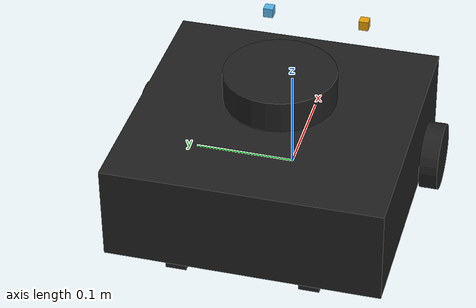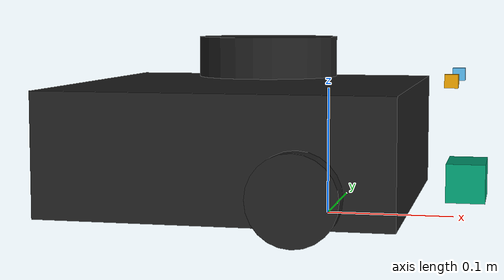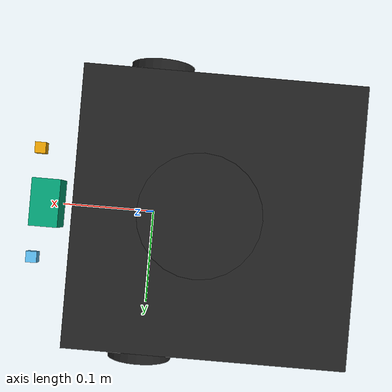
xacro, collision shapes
<?xml version="1.0" ?>
<robot name="turtlebot3_waffle_pi" xmlns:xacro="http://ros.org/wiki/xacro">
  <xacro:include filename="$(find turtlebot3_description)/urdf/common_properties.xacro"/>
  <xacro:include filename="$(find turtlebot3_description)/urdf/turtlebot3_waffle_pi.gazebo.xacro"/>

  <link name="base_footprint"/>

  <joint name="base_joint" type="fixed">
    <parent link="base_footprint"/>
    <child link="base_link" />
    <origin xyz="0 0 0.010" rpy="0 0 0"/>
  </joint>

  <link name="base_link">
    <visual>
      <origin xyz="-0.064 0 0.0" rpy="0 0 0"/>
      <geometry>
        <mesh filename="package://turtlebot3_description/meshes/bases/waffle_pi_base.stl" scale="0.001 0.001 0.001"/>
      </geometry>
      <material name="light_black"/>
    </visual>

    <collision>
      <origin xyz="-0.064 0 0.047" rpy="0 0 0"/>
      <geometry>
        <box size="0.266 0.266 0.094"/>
      </geometry>
    </collision>

    <inertial>
      <origin xyz="0 0 0" rpy="0 0 0"/>
      <mass value="1.3729096e+00"/>
      <inertia ixx="8.7002718e-03" ixy="-4.7576583e-05" ixz="1.1160499e-04"
               iyy="8.6195418e-03" iyz="-3.5422299e-06"
               izz="1.4612727e-02" />
    </inertial>
  </link>

  <joint name="wheel_left_joint" type="continuous">
    <parent link="base_link"/>
    <child link="wheel_left_link"/>
    <origin xyz="0.0 0.144 0.023" rpy="-1.57 0 0"/>
    <axis xyz="0 0 1"/>
  </joint>

  <link name="wheel_left_link">
    <visual>
      <origin xyz="0 0 0" rpy="1.57 0 0"/>
      <geometry>
        <mesh filename="package://turtlebot3_description/meshes/wheels/left_tire.stl" scale="0.001 0.001 0.001"/>
      </geometry>
      <material name="dark"/>
    </visual>

    <collision>
      <origin xyz="0 0 0" rpy="0 0 0"/>
      <geometry>
        <cylinder length="0.018" radius="0.033"/>
      </geometry>
    </collision>

    <inertial>
      <origin xyz="0 0 0" />
      <mass value="2.8498940e-02" />
      <inertia ixx="1.1175580e-05" ixy="-4.2369783e-11" ixz="-5.9381719e-09"
               iyy="1.1192413e-05" iyz="-1.4400107e-11"
               izz="2.0712558e-05" />
      </inertial>
  </link>

  <joint name="wheel_right_joint" type="continuous">
    <parent link="base_link"/>
    <child link="wheel_right_link"/>
    <origin xyz="0.0 -0.144 0.023" rpy="-1.57 0 0"/>
    <axis xyz="0 0 1"/>
  </joint>

  <link name="wheel_right_link">
    <visual>
      <origin xyz="0 0 0" rpy="1.57 0 0"/>
      <geometry>
        <mesh filename="package://turtlebot3_description/meshes/wheels/right_tire.stl" scale="0.001 0.001 0.001"/>
      </geometry>
      <material name="dark"/>
    </visual>

    <collision>
      <origin xyz="0 0 0" rpy="0 0 0"/>
      <geometry>
        <cylinder length="0.018" radius="0.033"/>
      </geometry>
    </collision>

    <inertial>
      <origin xyz="0 0 0" />
      <mass value="2.8498940e-02" />
      <inertia ixx="1.1175580e-05" ixy="-4.2369783e-11" ixz="-5.9381719e-09"
               iyy="1.1192413e-05" iyz="-1.4400107e-11"
               izz="2.0712558e-05" />
      </inertial>
  </link>

  <joint name="caster_back_right_joint" type="fixed">
    <parent link="base_link"/>
    <child link="caster_back_right_link"/>
    <origin xyz="-0.177 -0.064 -0.004" rpy="-1.57 0 0"/>
  </joint>

  <link name="caster_back_right_link">
    <collision>
      <origin xyz="0 0.001 0" rpy="0 0 0"/>
      <geometry>
        <box size="0.030 0.009 0.020"/>
      </geometry>
    </collision>

    <inertial>
      <origin xyz="0 0 0" />
      <mass value="0.005" />
      <inertia ixx="0.001" ixy="0.0" ixz="0.0"
               iyy="0.001" iyz="0.0"
               izz="0.001" />
    </inertial>
  </link>

  <joint name="caster_back_left_joint" type="fixed">
    <parent link="base_link"/>
    <child link="caster_back_left_link"/>
    <origin xyz="-0.177 0.064 -0.004" rpy="-1.57 0 0"/>
  </joint>

  <link name="caster_back_left_link">
    <collision>
      <origin xyz="0 0.001 0" rpy="0 0 0"/>
      <geometry>
        <box size="0.030 0.009 0.020"/>
      </geometry>
    </collision>

    <inertial>
      <origin xyz="0 0 0" />
      <mass value="0.005" />
      <inertia ixx="0.001" ixy="0.0" ixz="0.0"
               iyy="0.001" iyz="0.0"
               izz="0.001" />
    </inertial>
  </link>

  <joint name="imu_joint" type="fixed">
    <parent link="base_link"/>
    <child link="imu_link"/>
    <origin xyz="0.0 0 0.068" rpy="0 0 0"/>
  </joint>

  <link name="imu_link"/>

  <joint name="scan_joint" type="fixed">
    <parent link="base_link"/>
    <child link="base_scan"/>
    <origin xyz="-0.064 0 0.122" rpy="0 0 0"/>
  </joint>

  <link name="base_scan">
    <visual>
      <origin xyz="0 0 0.0" rpy="0 0 0"/>
      <geometry>
        <mesh filename="package://turtlebot3_description/meshes/sensors/lds.stl" scale="0.001 0.001 0.001"/>
      </geometry>
      <material name="dark"/>
    </visual>

    <collision>
      <origin xyz="0.015 0 -0.0065" rpy="0 0 0"/>
      <geometry>
        <cylinder length="0.0315" radius="0.055"/>
      </geometry>
    </collision>

    <inertial>
      <mass value="0.114" />
      <origin xyz="0 0 0" />
      <inertia ixx="0.001" ixy="0.0" ixz="0.0"
               iyy="0.001" iyz="0.0"
               izz="0.001" />
    </inertial>
  </link>

  <joint name="light_sensor_joint" type="fixed">
    <origin xyz="0.1 -0.05 0.1" rpy="0.0 1.57 0"/>
    <parent link="base_link"/>
    <child link="light_sensor__link"/>
  </joint>

  <link name="light_sensor__link">
    <inertial>
      <mass value="0.00001"/>
      <origin rpy="0 0 0" xyz="0.0  0  0.0"/>
      <inertia ixx="1" ixy="0" ixz="0" iyy="1" iyz="0" izz="1"/>
    </inertial>
    <collision name="light_sensor__collision">
      <origin rpy="0 0 0" xyz="0.0 0 0.0"/>
      <geometry>
        <box size="0.01 0.01 0.01"/>
      </geometry>
    </collision>
    <visual name="light_sensor__visual">
      <origin rpy="0 0.0 0" xyz="0.0 0 0.0"/>
      <geometry>
        <box size="0.01 0.01 0.01"/>
      </geometry>
    </visual>
  </link>

  <joint name="light_sensor_joint_left" type="fixed">
    <origin xyz="0.1 0.05 0.1" rpy="0.0 1.57 0"/>
    <parent link="base_link"/>
    <child link="light_sensor__link_left"/>
  </joint>

  <link name="light_sensor__link_left">
    <inertial>
      <mass value="0.00001"/>
      <origin rpy="0 0 0" xyz="0.0  0  0.0"/>
      <inertia ixx="1" ixy="0" ixz="0" iyy="1" iyz="0" izz="1"/>
    </inertial>
    <collision name="light_sensor__collision_left">
      <origin rpy="0 0 0" xyz="0.0 0 0.0"/>
      <geometry>
        <box size="0.01 0.01 0.01"/>
      </geometry>
    </collision>
    <visual name="light_sensor__visual_left">
      <origin rpy="0 0.0 0" xyz="0.0 0 0.0"/>
      <geometry>
        <box size="0.01 0.01 0.01"/>
      </geometry>
    </visual>
  </link>
  <joint name="bumper_joint" type="fixed">
    <axis xyz="0 1 0" />
    <origin xyz="0.05 0 0.02" rpy="0 0 0"/>
    <parent link="base_link"/>
    <child link="bump_sensor"/>
  </joint>

 <link name="bump_sensor">
    <collision name="bump_sensor_collision">
      <origin xyz="0.06 0 0" rpy="0 0 0"/>
      <geometry>
        <box size="0.03 0.05 0.03"/>
      </geometry>
    </collision>
    <visual>
      <origin xyz="0.06 0 0" rpy="0 0 0"/>
      <geometry>
         <box size="0.03 0.05 0.03"/>
      </geometry>
    </visual>

    <inertial>
      <mass value="1e-5" />
      <origin xyz="0 0 0" rpy="0 1.0 0"/>
      <inertia ixx="1e-6" ixy="0" ixz="0" iyy="1e-6" iyz="0" izz="1e-6" />
    </inertial>
  </link>
</robot>
